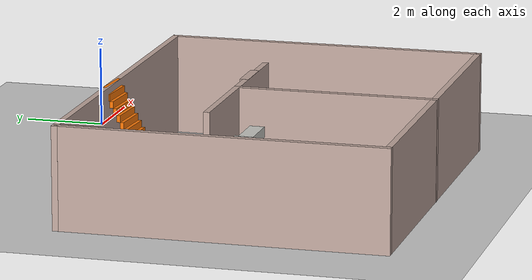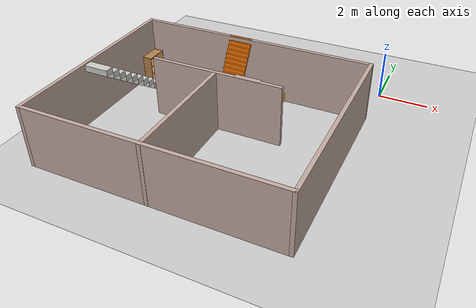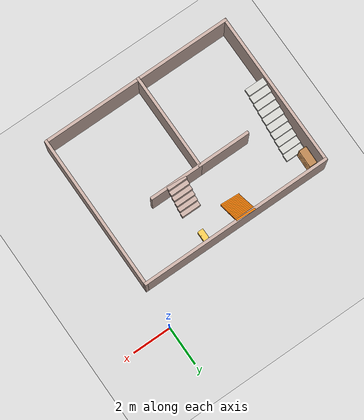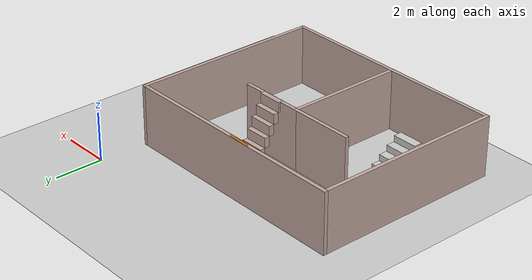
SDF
<sdf version="1.6">
 <world name="default">
  <model name="ground_plane">
   <static>1</static>
   <link name="link">
    <collision name="collision">
     <geometry><plane><normal>0 0 1</normal><size>100 100</size></plane></geometry>
     <surface><friction><ode><mu>100</mu><mu2>50</mu2></ode></friction></surface>
    </collision>
    <visual name="visual">
     <cast_shadows>0</cast_shadows>
     <geometry><plane><normal>0 0 1</normal><size>100 100</size></plane></geometry>
     <material>
      <script><uri>file://media/materials/scripts/gazebo.material</uri><name>Gazebo/Grey</name></script>
     </material>
    </visual>
   </link>
  </model>
  <model name="empty_room_colored_walls">
   <pose>-5.06103 -5.97507 0 0 -0 0</pose>
   <link name="Wall_62">
    <collision name="Wall_62_Collision">
     <geometry><box><size>10 0.15 2.5</size></box></geometry>
     <pose>0 0 1.25 0 -0 0</pose>
    </collision>
    <visual name="Wall_62_Visual">
     <pose>0 0 1.25 0 -0 0</pose>
     <geometry><box><size>10 0.15 2.5</size></box></geometry>
     <material>
      <script><uri>file://media/materials/scripts/gazebo.material</uri><name>Gazebo/Grey</name></script>
      <ambient>0.760784 0.662745 0.627451 1</ambient>
     </material>
    </visual>
    <pose>0 -3.92179 0 0 -0 0</pose>
   </link>
   <link name="Wall_63">
    <collision name="Wall_63_Collision">
     <geometry><box><size>8 0.15 2.5</size></box></geometry>
     <pose>0 0 1.25 0 -0 0</pose>
    </collision>
    <visual name="Wall_63_Visual">
     <pose>0 0 1.25 0 -0 0</pose>
     <geometry><box><size>8 0.15 2.5</size></box></geometry>
     <material>
      <script><uri>file://media/materials/scripts/gazebo.material</uri><name>Gazebo/Grey</name></script>
      <ambient>0.760784 0.662745 0.627451 1</ambient>
     </material>
    </visual>
    <pose>4.925 0.003206 0 0 -0 1.5708</pose>
   </link>
   <link name="Wall_64">
    <collision name="Wall_64_Collision">
     <geometry><box><size>10 0.15 2.5</size></box></geometry>
     <pose>0 0 1.25 0 -0 0</pose>
    </collision>
    <visual name="Wall_64_Visual">
     <pose>0 0 1.25 0 -0 0</pose>
     <geometry><box><size>10 0.15 2.5</size></box></geometry>
     <material>
      <script><uri>file://media/materials/scripts/gazebo.material</uri><name>Gazebo/Grey</name></script>
      <ambient>0.760784 0.662745 0.627451 1</ambient>
     </material>
    </visual>
    <pose>0 3.92821 0 0 -0 3.14159</pose>
   </link>
   <link name="Wall_65">
    <collision name="Wall_65_Collision">
     <geometry><box><size>8 0.15 2.5</size></box></geometry>
     <pose>0 0 1.25 0 -0 0</pose>
    </collision>
    <visual name="Wall_65_Visual">
     <pose>0 0 1.25 0 -0 0</pose>
     <geometry><box><size>8 0.15 2.5</size></box></geometry>
     <material>
      <script><uri>file://media/materials/scripts/gazebo.material</uri><name>Gazebo/Grey</name></script>
      <ambient>0.760784 0.662745 0.627451 1</ambient>
     </material>
    </visual>
    <pose>-4.925 0.003206 0 0 0 -1.5708</pose>
   </link>
   <link name="Wall_70">
    <collision name="Wall_70_Collision">
     <geometry><box><size>5 0.15 2.5</size></box></geometry>
     <pose>0 0 1.25 0 -0 0</pose>
    </collision>
    <visual name="Wall_70_Visual">
     <pose>0 0 1.25 0 -0 0</pose>
     <geometry><box><size>5 0.15 2.5</size></box></geometry>
     <material>
      <script><uri>file://media/materials/scripts/gazebo.material</uri><name>Gazebo/Grey</name></script>
      <ambient>0.760784 0.662745 0.627451 1</ambient>
     </material>
    </visual>
    <pose>-0.121943 -1.50321 0 0 -0 1.5708</pose>
   </link>
   <link name="Wall_71">
    <collision name="Wall_71_Collision">
     <geometry><box><size>2.75 0.15 2.5</size></box></geometry>
     <pose>0 0 1.25 0 -0 0</pose>
    </collision>
    <visual name="Wall_71_Visual">
     <pose>0 0 1.25 0 -0 0</pose>
     <geometry><box><size>2.75 0.15 2.5</size></box></geometry>
     <material>
      <script><uri>file://media/materials/scripts/gazebo.material</uri><name>Gazebo/Grey</name></script>
      <ambient>0.760784 0.662745 0.627451 1</ambient>
     </material>
    </visual>
    <pose>1.17806 0.921794 0 0 -0 0</pose>
   </link>
   <link name="Wall_73">
    <collision name="Wall_73_Collision">
     <geometry><box><size>2.75 0.15 2.5</size></box></geometry>
     <pose>0 0 1.25 0 -0 0</pose>
    </collision>
    <visual name="Wall_73_Visual">
     <pose>0 0 1.25 0 -0 0</pose>
     <geometry><box><size>2.75 0.15 2.5</size></box></geometry>
     <material>
      <script><uri>file://media/materials/scripts/gazebo.material</uri><name>Gazebo/Grey</name></script>
      <ambient>0.760784 0.662745 0.627451 1</ambient>
     </material>
    </visual>
    <pose>-1.42194 0.921794 0 0 -0 3.14159</pose>
   </link>
   <static>1</static>
  </model>
  <model name="bookshelf">
   <static>1</static>
   <link name="link">
    <inertial><mass>1</mass></inertial>
    <collision name="back">
     <pose>0 0.005 0.6 0 -0 0</pose>
     <geometry><box><size>0.9 0.01 1.2</size></box></geometry>
    </collision>
    <visual name="visual1">
     <pose>0 0.005 0.6 0 -0 0</pose>
     <geometry><box><size>0.9 0.01 1.2</size></box></geometry>
     <material>
      <script><uri>file://media/materials/scripts/gazebo.material</uri><name>Gazebo/Wood</name></script>
     </material>
    </visual>
    <collision name="left_side">
     <pose>0.45 -0.195 0.6 0 -0 0</pose>
     <geometry><box><size>0.02 0.4 1.2</size></box></geometry>
    </collision>
    <visual name="visual2">
     <pose>0.45 -0.195 0.6 0 -0 0</pose>
     <geometry><box><size>0.02 0.4 1.2</size></box></geometry>
     <material>
      <script><uri>file://media/materials/scripts/gazebo.material</uri><name>Gazebo/Wood</name></script>
     </material>
    </visual>
    <collision name="right_side">
     <pose>-0.45 -0.195 0.6 0 -0 0</pose>
     <geometry><box><size>0.02 0.4 1.2</size></box></geometry>
    </collision>
    <visual name="visual3">
     <pose>-0.45 -0.195 0.6 0 -0 0</pose>
     <geometry><box><size>0.02 0.4 1.2</size></box></geometry>
     <material>
      <script><uri>file://media/materials/scripts/gazebo.material</uri><name>Gazebo/Wood</name></script>
     </material>
    </visual>
    <collision name="bottom">
     <pose>0 -0.195 0.03 0 -0 0</pose>
     <geometry><box><size>0.88 0.4 0.06</size></box></geometry>
    </collision>
    <visual name="visual4">
     <pose>0 -0.195 0.03 0 -0 0</pose>
     <geometry><box><size>0.88 0.4 0.06</size></box></geometry>
     <material>
      <script><uri>file://media/materials/scripts/gazebo.material</uri><name>Gazebo/Wood</name></script>
     </material>
    </visual>
    <collision name="top">
     <pose>0 -0.195 1.19 0 -0 0</pose>
     <geometry><box><size>0.88 0.4 0.02</size></box></geometry>
    </collision>
    <visual name="visual5">
     <pose>0 -0.195 1.19 0 -0 0</pose>
     <geometry><box><size>0.88 0.4 0.02</size></box></geometry>
     <material>
      <script><uri>file://media/materials/scripts/gazebo.material</uri><name>Gazebo/Wood</name></script>
     </material>
    </visual>
    <collision name="low_shelf">
     <pose>0 -0.195 0.43 0 -0 0</pose>
     <geometry><box><size>0.88 0.4 0.02</size></box></geometry>
    </collision>
    <visual name="visual6">
     <pose>0 -0.195 0.43 0 -0 0</pose>
     <geometry><box><size>0.88 0.4 0.02</size></box></geometry>
     <material>
      <script><uri>file://media/materials/scripts/gazebo.material</uri><name>Gazebo/Wood</name></script>
     </material>
    </visual>
    <collision name="high_shelf">
     <pose>0 -0.195 0.8 0 -0 0</pose>
     <geometry><box><size>0.88 0.4 0.02</size></box></geometry>
    </collision>
    <visual name="visual7">
     <pose>0 -0.195 0.8 0 -0 0</pose>
     <geometry><box><size>0.88 0.4 0.02</size></box></geometry>
     <material>
      <script><uri>file://media/materials/scripts/gazebo.material</uri><name>Gazebo/Wood</name></script>
     </material>
    </visual>
   </link>
   <pose>-9.80012 -2.72902 0 0 -0 1.5503</pose>
  </model>
  <model name="Wall_Cabinet_15x30">
   <pose>-3.68904 -2.48298 0 0 -0 0</pose>
   <link name="Wall_0">
    <pose>0 0.374 0.192 0 -0 0</pose>
    <inertial>
     <mass>0.9882</mass>
     <inertia><ixx>0.0072</ixx><iyy>0.0194</iyy><izz>0.0122</izz><ixy>0</ixy><ixz>0</ixz><iyz>0</iyz></inertia>
    </inertial>
    <collision name="Wall_0_Collision"><geometry><box><size>0.296 0.02 0.384</size></box></geometry></collision>
    <visual name="Wall_0_Visual">
     <geometry><box><size>0.296 0.02 0.384</size></box></geometry>
     <material>
      <script><uri>file://media/materials/scripts/gazebo.material</uri><name>Gazebo/Grey</name></script>
      <ambient>1 0.764706 0.305882 1</ambient>
     </material>
    </visual>
   </link>
   <joint name="0_2" type="fixed">
    <pose>0 0 0.192 0 -0 0</pose>
    <parent>Wall_2</parent>
    <child>Wall_0</child>
    <axis>
     <xyz>0 0 1</xyz>
     <use_parent_model_frame>0</use_parent_model_frame>
     <limit><lower>-1e+16</lower><upper>1e+16</upper></limit>
    </axis>
   </joint>
   <joint name="0_4" type="fixed">
    <pose>0 0 -0.192 0 -0 0</pose>
    <parent>Wall_4</parent>
    <child>Wall_0</child>
    <axis>
     <xyz>0 0 1</xyz>
     <use_parent_model_frame>0</use_parent_model_frame>
     <limit><lower>-1e+16</lower><upper>1e+16</upper></limit>
    </axis>
   </joint>
   <joint name="0_15" type="fixed">
    <pose>0.148 0 0 0 -0 0</pose>
    <parent>Wall_15</parent>
    <child>Wall_0</child>
    <axis>
     <xyz>1 0 0</xyz>
     <use_parent_model_frame>0</use_parent_model_frame>
     <limit><lower>-1e+16</lower><upper>1e+16</upper></limit>
    </axis>
   </joint>
   <link name="Wall_11">
    <pose>0 -0.132768 0.192 0 -0 0</pose>
    <inertial>
     <mass>0.9882</mass>
     <inertia><ixx>0.0072</ixx><iyy>0.0194</iyy><izz>0.0122</izz><ixy>0</ixy><ixz>0</ixz><iyz>0</iyz></inertia>
    </inertial>
    <collision name="Wall_11_Collision"><geometry><box><size>0.296 0.02 0.384</size></box></geometry></collision>
    <visual name="Wall_11_Visual">
     <geometry><box><size>0.296 0.02 0.384</size></box></geometry>
     <material>
      <script><uri>file://media/materials/scripts/gazebo.material</uri><name>Gazebo/Grey</name></script>
      <ambient>1 0.764706 0.305882 1</ambient>
     </material>
    </visual>
   </link>
   <joint name="11_2" type="fixed">
    <pose>0 0 0.192 0 -0 0</pose>
    <parent>Wall_2</parent>
    <child>Wall_11</child>
    <axis>
     <xyz>0 0 1</xyz>
     <use_parent_model_frame>0</use_parent_model_frame>
     <limit><lower>-1e+16</lower><upper>1e+16</upper></limit>
    </axis>
   </joint>
   <joint name="11_4" type="fixed">
    <pose>0 0 -0.192 0 -0 0</pose>
    <parent>Wall_4</parent>
    <child>Wall_11</child>
    <axis>
     <xyz>0 0 1</xyz>
     <use_parent_model_frame>0</use_parent_model_frame>
     <limit><lower>-1e+16</lower><upper>1e+16</upper></limit>
    </axis>
   </joint>
   <joint name="11_15" type="fixed">
    <pose>0.148 0 0 0 -0 0</pose>
    <parent>Wall_15</parent>
    <child>Wall_11</child>
    <axis>
     <xyz>1 0 0</xyz>
     <use_parent_model_frame>0</use_parent_model_frame>
     <limit><lower>-1e+16</lower><upper>1e+16</upper></limit>
    </axis>
   </joint>
   <link name="Wall_15">
    <pose>0.138 0 0.19 0 -0 0</pose>
    <inertial>
     <mass>2.5241</mass>
     <inertia><ixx>0.0305</ixx><iyy>0.1229</iyy><izz>0.1532</izz><ixy>0</ixy><ixz>0</ixz><iyz>0</iyz></inertia>
    </inertial>
    <collision name="Wall_15_Collision"><geometry><box><size>0.02 0.764 0.38</size></box></geometry></collision>
    <visual name="Wall_15_Visual">
     <geometry><box><size>0.02 0.764 0.38</size></box></geometry>
     <material>
      <script><uri>file://media/materials/scripts/gazebo.material</uri><name>Gazebo/Grey</name></script>
      <ambient>1 0.764706 0.305882 1</ambient>
     </material>
    </visual>
   </link>
   <joint name="15_2" type="fixed">
    <pose>0 0 0.19 0 -0 0</pose>
    <parent>Wall_2</parent>
    <child>Wall_15</child>
    <axis>
     <xyz>0 0 1</xyz>
     <use_parent_model_frame>0</use_parent_model_frame>
     <limit><lower>-1e+16</lower><upper>1e+16</upper></limit>
    </axis>
   </joint>
   <joint name="15_4" type="fixed">
    <pose>0 0 -0.19 0 -0 0</pose>
    <parent>Wall_4</parent>
    <child>Wall_15</child>
    <axis>
     <xyz>0 0 1</xyz>
     <use_parent_model_frame>0</use_parent_model_frame>
     <limit><lower>-1e+16</lower><upper>1e+16</upper></limit>
    </axis>
   </joint>
   <link name="Wall_2">
    <pose>0 0 0.374 0 -0 0</pose>
    <inertial>
     <mass>1.9765</mass>
     <inertia><ixx>0.0145</ixx><iyy>0.1116</iyy><izz>0.0972</izz><ixy>0</ixy><ixz>0</ixz><iyz>0</iyz></inertia>
    </inertial>
    <collision name="Wall_2_Collision"><geometry><box><size>0.296 0.768 0.02</size></box></geometry></collision>
    <visual name="Wall_2_Visual">
     <geometry><box><size>0.296 0.768 0.02</size></box></geometry>
     <material>
      <script><uri>file://media/materials/scripts/gazebo.material</uri><name>Gazebo/Grey</name></script>
      <ambient>1 0.764706 0.305882 1</ambient>
     </material>
    </visual>
   </link>
   <link name="Wall_4">
    <pose>0 0 0.01 0 -0 0</pose>
    <inertial>
     <mass>1.9765</mass>
     <inertia><ixx>0.0145</ixx><iyy>0.1116</iyy><izz>0.0972</izz><ixy>0</ixy><ixz>0</ixz><iyz>0</iyz></inertia>
    </inertial>
    <collision name="Wall_4_Collision"><geometry><box><size>0.296 0.768 0.02</size></box></geometry></collision>
    <visual name="Wall_4_Visual">
     <geometry><box><size>0.296 0.768 0.02</size></box></geometry>
     <material>
      <script><uri>file://media/materials/scripts/gazebo.material</uri><name>Gazebo/Grey</name></script>
      <ambient>1 0.764706 0.305882 1</ambient>
     </material>
    </visual>
    <pose>-0.181124 0 0 0 0 -1.5708</pose>
   </link>
   <link name="Wall_6">
    <pose>0 -0.374 0.192 0 -0 0</pose>
    <inertial>
     <mass>0.9882</mass>
     <inertia><ixx>0.0072</ixx><iyy>0.0194</iyy><izz>0.0122</izz><ixy>0</ixy><ixz>0</ixz><iyz>0</iyz></inertia>
    </inertial>
    <collision name="Wall_6_Collision"><geometry><box><size>0.296 0.02 0.384</size></box></geometry></collision>
    <visual name="Wall_6_Visual">
     <geometry><box><size>0.296 0.02 0.384</size></box></geometry>
     <material>
      <script><uri>file://media/materials/scripts/gazebo.material</uri><name>Gazebo/Grey</name></script>
      <ambient>1 0.764706 0.305882 1</ambient>
     </material>
    </visual>
   </link>
   <joint name="6_2" type="fixed">
    <pose>0 0 0.192 0 -0 0</pose>
    <parent>Wall_2</parent>
    <child>Wall_6</child>
    <axis>
     <xyz>0 0 1</xyz>
     <use_parent_model_frame>0</use_parent_model_frame>
     <limit><lower>-1e+16</lower><upper>1e+16</upper></limit>
    </axis>
   </joint>
   <joint name="6_4" type="fixed">
    <pose>0 0 -0.192 0 -0 0</pose>
    <parent>Wall_4</parent>
    <child>Wall_6</child>
    <axis>
     <xyz>0 0 1</xyz>
     <use_parent_model_frame>0</use_parent_model_frame>
     <limit><lower>-1e+16</lower><upper>1e+16</upper></limit>
    </axis>
   </joint>
   <joint name="6_15" type="fixed">
    <pose>0.148 0 0 0 -0 0</pose>
    <parent>Wall_15</parent>
    <child>Wall_6</child>
    <axis>
     <xyz>1 0 0</xyz>
     <use_parent_model_frame>0</use_parent_model_frame>
     <limit><lower>-1e+16</lower><upper>1e+16</upper></limit>
    </axis>
   </joint>
   <link name="Wall_8">
    <pose>0 0.120833 0.192 0 -0 0</pose>
    <inertial>
     <mass>0.9882</mass>
     <inertia><ixx>0.0072</ixx><iyy>0.0194</iyy><izz>0.0122</izz><ixy>0</ixy><ixz>0</ixz><iyz>0</iyz></inertia>
    </inertial>
    <collision name="Wall_8_Collision"><geometry><box><size>0.296 0.02 0.384</size></box></geometry></collision>
    <visual name="Wall_8_Visual">
     <geometry><box><size>0.296 0.02 0.384</size></box></geometry>
     <material>
      <script><uri>file://media/materials/scripts/gazebo.material</uri><name>Gazebo/Grey</name></script>
      <ambient>1 0.764706 0.305882 1</ambient>
     </material>
    </visual>
   </link>
   <joint name="8_2" type="fixed">
    <pose>0 0 0.192 0 -0 0</pose>
    <parent>Wall_2</parent>
    <child>Wall_8</child>
    <axis>
     <xyz>0 0 1</xyz>
     <use_parent_model_frame>0</use_parent_model_frame>
     <limit><lower>-1e+16</lower><upper>1e+16</upper></limit>
    </axis>
   </joint>
   <joint name="8_4" type="fixed">
    <pose>0 0 -0.192 0 -0 0</pose>
    <parent>Wall_4</parent>
    <child>Wall_8</child>
    <axis>
     <xyz>0 0 1</xyz>
     <use_parent_model_frame>0</use_parent_model_frame>
     <limit><lower>-1e+16</lower><upper>1e+16</upper></limit>
    </axis>
   </joint>
   <joint name="8_15" type="fixed">
    <pose>0.148 0 0 0 -0 0</pose>
    <parent>Wall_15</parent>
    <child>Wall_8</child>
    <axis>
     <xyz>1 0 0</xyz>
     <use_parent_model_frame>0</use_parent_model_frame>
     <limit><lower>-1e+16</lower><upper>1e+16</upper></limit>
    </axis>
   </joint>
   <static>1</static>
  </model>
  <model name="stairs_0">
   <pose>-9.34427 -4.97206 0 0 -0 0</pose>
   <link name="Stairs_5">
    <visual name="Stairs_5_Visual_0">
     <pose>0 1.575 0.125 0 -0 0</pose>
     <geometry><box><size>1 0.35 0.25</size></box></geometry>
     <material>
      <script><uri>file://media/materials/scripts/gazebo.material</uri><name>Gazebo/CeilingTiled</name></script>
      <ambient>0.760784 0.662745 0.627451 1</ambient>
     </material>
    </visual>
    <collision name="Stairs_5_Collision_0">
     <geometry><box><size>1 0.35 0.25</size></box></geometry>
     <pose>0 1.575 0.125 0 -0 0</pose>
    </collision>
    <visual name="Stairs_5_Visual_1">
     <pose>0 1.225 0.375 0 -0 0</pose>
     <geometry><box><size>1 0.35 0.25</size></box></geometry>
     <material>
      <script><uri>file://media/materials/scripts/gazebo.material</uri><name>Gazebo/CeilingTiled</name></script>
      <ambient>0.760784 0.662745 0.627451 1</ambient>
     </material>
    </visual>
    <collision name="Stairs_5_Collision_1">
     <geometry><box><size>1 0.35 0.25</size></box></geometry>
     <pose>0 1.225 0.375 0 -0 0</pose>
    </collision>
    <visual name="Stairs_5_Visual_2">
     <pose>0 0.875 0.625 0 -0 0</pose>
     <geometry><box><size>1 0.35 0.25</size></box></geometry>
     <material>
      <script><uri>file://media/materials/scripts/gazebo.material</uri><name>Gazebo/CeilingTiled</name></script>
      <ambient>0.760784 0.662745 0.627451 1</ambient>
     </material>
    </visual>
    <collision name="Stairs_5_Collision_2">
     <geometry><box><size>1 0.35 0.25</size></box></geometry>
     <pose>0 0.875 0.625 0 -0 0</pose>
    </collision>
    <visual name="Stairs_5_Visual_3">
     <pose>0 0.525 0.875 0 -0 0</pose>
     <geometry><box><size>1 0.35 0.25</size></box></geometry>
     <material>
      <script><uri>file://media/materials/scripts/gazebo.material</uri><name>Gazebo/CeilingTiled</name></script>
      <ambient>0.760784 0.662745 0.627451 1</ambient>
     </material>
    </visual>
    <collision name="Stairs_5_Collision_3">
     <geometry><box><size>1 0.35 0.25</size></box></geometry>
     <pose>0 0.525 0.875 0 -0 0</pose>
    </collision>
    <visual name="Stairs_5_Visual_4">
     <pose>0 0.175 1.125 0 -0 0</pose>
     <geometry><box><size>1 0.35 0.25</size></box></geometry>
     <material>
      <script><uri>file://media/materials/scripts/gazebo.material</uri><name>Gazebo/CeilingTiled</name></script>
      <ambient>0.760784 0.662745 0.627451 1</ambient>
     </material>
    </visual>
    <collision name="Stairs_5_Collision_4">
     <geometry><box><size>1 0.35 0.25</size></box></geometry>
     <pose>0 0.175 1.125 0 -0 0</pose>
    </collision>
    <visual name="Stairs_5_Visual_5">
     <pose>0 -0.175 1.375 0 -0 0</pose>
     <geometry><box><size>1 0.35 0.25</size></box></geometry>
     <material>
      <script><uri>file://media/materials/scripts/gazebo.material</uri><name>Gazebo/CeilingTiled</name></script>
      <ambient>0.760784 0.662745 0.627451 1</ambient>
     </material>
    </visual>
    <collision name="Stairs_5_Collision_5">
     <geometry><box><size>1 0.35 0.25</size></box></geometry>
     <pose>0 -0.175 1.375 0 -0 0</pose>
    </collision>
    <visual name="Stairs_5_Visual_6">
     <pose>0 -0.525 1.625 0 -0 0</pose>
     <geometry><box><size>1 0.35 0.25</size></box></geometry>
     <material>
      <script><uri>file://media/materials/scripts/gazebo.material</uri><name>Gazebo/CeilingTiled</name></script>
      <ambient>0.760784 0.662745 0.627451 1</ambient>
     </material>
    </visual>
    <collision name="Stairs_5_Collision_6">
     <geometry><box><size>1 0.35 0.25</size></box></geometry>
     <pose>0 -0.525 1.625 0 -0 0</pose>
    </collision>
    <visual name="Stairs_5_Visual_7">
     <pose>0 -0.875 1.875 0 -0 0</pose>
     <geometry><box><size>1 0.35 0.25</size></box></geometry>
     <material>
      <script><uri>file://media/materials/scripts/gazebo.material</uri><name>Gazebo/CeilingTiled</name></script>
      <ambient>0.760784 0.662745 0.627451 1</ambient>
     </material>
    </visual>
    <collision name="Stairs_5_Collision_7">
     <geometry><box><size>1 0.35 0.25</size></box></geometry>
     <pose>0 -0.875 1.875 0 -0 0</pose>
    </collision>
    <visual name="Stairs_5_Visual_8">
     <pose>0 -1.225 2.125 0 -0 0</pose>
     <geometry><box><size>1 0.35 0.25</size></box></geometry>
     <material>
      <script><uri>file://media/materials/scripts/gazebo.material</uri><name>Gazebo/CeilingTiled</name></script>
      <ambient>0.760784 0.662745 0.627451 1</ambient>
     </material>
    </visual>
    <collision name="Stairs_5_Collision_8">
     <geometry><box><size>1 0.35 0.25</size></box></geometry>
     <pose>0 -1.225 2.125 0 -0 0</pose>
    </collision>
    <visual name="Stairs_5_Visual_9">
     <pose>0 -1.575 2.375 0 -0 0</pose>
     <geometry><box><size>1 0.35 0.25</size></box></geometry>
     <material>
      <script><uri>file://media/materials/scripts/gazebo.material</uri><name>Gazebo/CeilingTiled</name></script>
      <ambient>0.760784 0.662745 0.627451 1</ambient>
     </material>
    </visual>
    <collision name="Stairs_5_Collision_9">
     <geometry><box><size>1 0.35 0.25</size></box></geometry>
     <pose>0 -1.575 2.375 0 -0 0</pose>
    </collision>
   </link>
   <static>1</static>
  </model>
  <model name="stairs1">
   <pose>-3.88 -4.47 0 0 -0 0</pose>
   <link name="Stairs_2">
    <visual name="Stairs_2_Visual_0">
     <pose>0 0.541666 0.208333 0 -0 0</pose>
     <geometry><box><size>1 0.216667 0.416667</size></box></geometry>
     <material>
      <script><uri>file://media/materials/scripts/gazebo.material</uri><name>Gazebo/Grey</name></script>
      <ambient>0.760784 0.662745 0.627451 1</ambient>
     </material>
    </visual>
    <collision name="Stairs_2_Collision_0">
     <geometry><box><size>1 0.216667 0.416667</size></box></geometry>
     <pose>0 0.541666 0.208333 0 -0 0</pose>
    </collision>
    <visual name="Stairs_2_Visual_1">
     <pose>0 0.325 0.625 0 -0 0</pose>
     <geometry><box><size>1 0.216667 0.416667</size></box></geometry>
     <material>
      <script><uri>file://media/materials/scripts/gazebo.material</uri><name>Gazebo/Grey</name></script>
      <ambient>0.760784 0.662745 0.627451 1</ambient>
     </material>
    </visual>
    <collision name="Stairs_2_Collision_1">
     <geometry><box><size>1 0.216667 0.416667</size></box></geometry>
     <pose>0 0.325 0.625 0 -0 0</pose>
    </collision>
    <visual name="Stairs_2_Visual_2">
     <pose>0 0.108333 1.04167 0 -0 0</pose>
     <geometry><box><size>1 0.216667 0.416667</size></box></geometry>
     <material>
      <script><uri>file://media/materials/scripts/gazebo.material</uri><name>Gazebo/Grey</name></script>
      <ambient>0.760784 0.662745 0.627451 1</ambient>
     </material>
    </visual>
    <collision name="Stairs_2_Collision_2">
     <geometry><box><size>1 0.216667 0.416667</size></box></geometry>
     <pose>0 0.108333 1.04167 0 -0 0</pose>
    </collision>
    <visual name="Stairs_2_Visual_3">
     <pose>0 -0.108333 1.45833 0 -0 0</pose>
     <geometry><box><size>1 0.216667 0.416667</size></box></geometry>
     <material>
      <script><uri>file://media/materials/scripts/gazebo.material</uri><name>Gazebo/Grey</name></script>
      <ambient>0.760784 0.662745 0.627451 1</ambient>
     </material>
    </visual>
    <collision name="Stairs_2_Collision_3">
     <geometry><box><size>1 0.216667 0.416667</size></box></geometry>
     <pose>0 -0.108333 1.45833 0 -0 0</pose>
    </collision>
    <visual name="Stairs_2_Visual_4">
     <pose>0 -0.325 1.875 0 -0 0</pose>
     <geometry><box><size>1 0.216667 0.416667</size></box></geometry>
     <material>
      <script><uri>file://media/materials/scripts/gazebo.material</uri><name>Gazebo/Grey</name></script>
      <ambient>0.760784 0.662745 0.627451 1</ambient>
     </material>
    </visual>
    <collision name="Stairs_2_Collision_4">
     <geometry><box><size>1 0.216667 0.416667</size></box></geometry>
     <pose>0 -0.325 1.875 0 -0 0</pose>
    </collision>
    <visual name="Stairs_2_Visual_5">
     <pose>0 -0.541667 2.29167 0 -0 0</pose>
     <geometry><box><size>1 0.216667 0.416667</size></box></geometry>
     <material>
      <script><uri>file://media/materials/scripts/gazebo.material</uri><name>Gazebo/Grey</name></script>
      <ambient>0.760784 0.662745 0.627451 1</ambient>
     </material>
    </visual>
    <collision name="Stairs_2_Collision_5">
     <geometry><box><size>1 0.216667 0.416667</size></box></geometry>
     <pose>0 -0.541667 2.29167 0 -0 0</pose>
    </collision>
   </link>
   <static>1</static>
  </model>
  <model name="stairs2">
   <pose>-5.62473 -2.65591 0 0 -0 3.08312</pose>
   <link name="Stairs_5">
    <visual name="Stairs_5_Visual_0">
     <pose>0 0.611333 0.083333 0 -0 0</pose>
     <geometry><box><size>1 0.087333 0.166667</size></box></geometry>
     <material>
      <script><uri>file://media/materials/scripts/gazebo.material</uri><name>Gazebo/Grey</name></script>
      <ambient>0.996078 0.47451 0.0196078 1</ambient>
     </material>
    </visual>
    <collision name="Stairs_5_Collision_0">
     <geometry><box><size>1 0.087333 0.166667</size></box></geometry>
     <pose>0 0.611333 0.083333 0 -0 0</pose>
    </collision>
    <visual name="Stairs_5_Visual_1">
     <pose>0 0.524 0.25 0 -0 0</pose>
     <geometry><box><size>1 0.087333 0.166667</size></box></geometry>
     <material>
      <script><uri>file://media/materials/scripts/gazebo.material</uri><name>Gazebo/Grey</name></script>
      <ambient>0.996078 0.47451 0.0196078 1</ambient>
     </material>
    </visual>
    <collision name="Stairs_5_Collision_1">
     <geometry><box><size>1 0.087333 0.166667</size></box></geometry>
     <pose>0 0.524 0.25 0 -0 0</pose>
    </collision>
    <visual name="Stairs_5_Visual_2">
     <pose>0 0.436667 0.416667 0 -0 0</pose>
     <geometry><box><size>1 0.087333 0.166667</size></box></geometry>
     <material>
      <script><uri>file://media/materials/scripts/gazebo.material</uri><name>Gazebo/Grey</name></script>
      <ambient>0.996078 0.47451 0.0196078 1</ambient>
     </material>
    </visual>
    <collision name="Stairs_5_Collision_2">
     <geometry><box><size>1 0.087333 0.166667</size></box></geometry>
     <pose>0 0.436667 0.416667 0 -0 0</pose>
    </collision>
    <visual name="Stairs_5_Visual_3">
     <pose>0 0.349333 0.583333 0 -0 0</pose>
     <geometry><box><size>1 0.087333 0.166667</size></box></geometry>
     <material>
      <script><uri>file://media/materials/scripts/gazebo.material</uri><name>Gazebo/Grey</name></script>
      <ambient>0.996078 0.47451 0.0196078 1</ambient>
     </material>
    </visual>
    <collision name="Stairs_5_Collision_3">
     <geometry><box><size>1 0.087333 0.166667</size></box></geometry>
     <pose>0 0.349333 0.583333 0 -0 0</pose>
    </collision>
    <visual name="Stairs_5_Visual_4">
     <pose>0 0.262 0.75 0 -0 0</pose>
     <geometry><box><size>1 0.087333 0.166667</size></box></geometry>
     <material>
      <script><uri>file://media/materials/scripts/gazebo.material</uri><name>Gazebo/Grey</name></script>
      <ambient>0.996078 0.47451 0.0196078 1</ambient>
     </material>
    </visual>
    <collision name="Stairs_5_Collision_4">
     <geometry><box><size>1 0.087333 0.166667</size></box></geometry>
     <pose>0 0.262 0.75 0 -0 0</pose>
    </collision>
    <visual name="Stairs_5_Visual_5">
     <pose>0 0.174667 0.916667 0 -0 0</pose>
     <geometry><box><size>1 0.087333 0.166667</size></box></geometry>
     <material>
      <script><uri>file://media/materials/scripts/gazebo.material</uri><name>Gazebo/Grey</name></script>
      <ambient>0.996078 0.47451 0.0196078 1</ambient>
     </material>
    </visual>
    <collision name="Stairs_5_Collision_5">
     <geometry><box><size>1 0.087333 0.166667</size></box></geometry>
     <pose>0 0.174667 0.916667 0 -0 0</pose>
    </collision>
    <visual name="Stairs_5_Visual_6">
     <pose>0 0.087334 1.08333 0 -0 0</pose>
     <geometry><box><size>1 0.087333 0.166667</size></box></geometry>
     <material>
      <script><uri>file://media/materials/scripts/gazebo.material</uri><name>Gazebo/Grey</name></script>
      <ambient>0.996078 0.47451 0.0196078 1</ambient>
     </material>
    </visual>
    <collision name="Stairs_5_Collision_6">
     <geometry><box><size>1 0.087333 0.166667</size></box></geometry>
     <pose>0 0.087334 1.08333 0 -0 0</pose>
    </collision>
    <visual name="Stairs_5_Visual_7">
     <pose>0 0 1.25 0 -0 0</pose>
     <geometry><box><size>1 0.087333 0.166667</size></box></geometry>
     <material>
      <script><uri>file://media/materials/scripts/gazebo.material</uri><name>Gazebo/Grey</name></script>
      <ambient>0.996078 0.47451 0.0196078 1</ambient>
     </material>
    </visual>
    <collision name="Stairs_5_Collision_7">
     <geometry><box><size>1 0.087333 0.166667</size></box></geometry>
     <pose>0 0 1.25 0 -0 0</pose>
    </collision>
    <visual name="Stairs_5_Visual_8">
     <pose>0 -0.087333 1.41667 0 -0 0</pose>
     <geometry><box><size>1 0.087333 0.166667</size></box></geometry>
     <material>
      <script><uri>file://media/materials/scripts/gazebo.material</uri><name>Gazebo/Grey</name></script>
      <ambient>0.996078 0.47451 0.0196078 1</ambient>
     </material>
    </visual>
    <collision name="Stairs_5_Collision_8">
     <geometry><box><size>1 0.087333 0.166667</size></box></geometry>
     <pose>0 -0.087333 1.41667 0 -0 0</pose>
    </collision>
    <visual name="Stairs_5_Visual_9">
     <pose>0 -0.174667 1.58333 0 -0 0</pose>
     <geometry><box><size>1 0.087333 0.166667</size></box></geometry>
     <material>
      <script><uri>file://media/materials/scripts/gazebo.material</uri><name>Gazebo/Grey</name></script>
      <ambient>0.996078 0.47451 0.0196078 1</ambient>
     </material>
    </visual>
    <collision name="Stairs_5_Collision_9">
     <geometry><box><size>1 0.087333 0.166667</size></box></geometry>
     <pose>0 -0.174667 1.58333 0 -0 0</pose>
    </collision>
    <visual name="Stairs_5_Visual_10">
     <pose>0 -0.262 1.75 0 -0 0</pose>
     <geometry><box><size>1 0.087333 0.166667</size></box></geometry>
     <material>
      <script><uri>file://media/materials/scripts/gazebo.material</uri><name>Gazebo/Grey</name></script>
      <ambient>0.996078 0.47451 0.0196078 1</ambient>
     </material>
    </visual>
    <collision name="Stairs_5_Collision_10">
     <geometry><box><size>1 0.087333 0.166667</size></box></geometry>
     <pose>0 -0.262 1.75 0 -0 0</pose>
    </collision>
    <visual name="Stairs_5_Visual_11">
     <pose>0 -0.349333 1.91667 0 -0 0</pose>
     <geometry><box><size>1 0.087333 0.166667</size></box></geometry>
     <material>
      <script><uri>file://media/materials/scripts/gazebo.material</uri><name>Gazebo/Grey</name></script>
      <ambient>0.996078 0.47451 0.0196078 1</ambient>
     </material>
    </visual>
    <collision name="Stairs_5_Collision_11">
     <geometry><box><size>1 0.087333 0.166667</size></box></geometry>
     <pose>0 -0.349333 1.91667 0 -0 0</pose>
    </collision>
    <visual name="Stairs_5_Visual_12">
     <pose>0 -0.436666 2.08333 0 -0 0</pose>
     <geometry><box><size>1 0.087333 0.166667</size></box></geometry>
     <material>
      <script><uri>file://media/materials/scripts/gazebo.material</uri><name>Gazebo/Grey</name></script>
      <ambient>0.996078 0.47451 0.0196078 1</ambient>
     </material>
    </visual>
    <collision name="Stairs_5_Collision_12">
     <geometry><box><size>1 0.087333 0.166667</size></box></geometry>
     <pose>0 -0.436666 2.08333 0 -0 0</pose>
    </collision>
    <visual name="Stairs_5_Visual_13">
     <pose>0 -0.524 2.25 0 -0 0</pose>
     <geometry><box><size>1 0.087333 0.166667</size></box></geometry>
     <material>
      <script><uri>file://media/materials/scripts/gazebo.material</uri><name>Gazebo/Grey</name></script>
      <ambient>0.996078 0.47451 0.0196078 1</ambient>
     </material>
    </visual>
    <collision name="Stairs_5_Collision_13">
     <geometry><box><size>1 0.087333 0.166667</size></box></geometry>
     <pose>0 -0.524 2.25 0 -0 0</pose>
    </collision>
    <visual name="Stairs_5_Visual_14">
     <pose>0 -0.611333 2.41667 0 -0 0</pose>
     <geometry><box><size>1 0.087333 0.166667</size></box></geometry>
     <material>
      <script><uri>file://media/materials/scripts/gazebo.material</uri><name>Gazebo/Grey</name></script>
      <ambient>0.996078 0.47451 0.0196078 1</ambient>
     </material>
    </visual>
    <collision name="Stairs_5_Collision_14">
     <geometry><box><size>1 0.087333 0.166667</size></box></geometry>
     <pose>0 -0.611333 2.41667 0 -0 0</pose>
    </collision>
   </link>
   <static>1</static>
  </model>
 </world>
</sdf>
